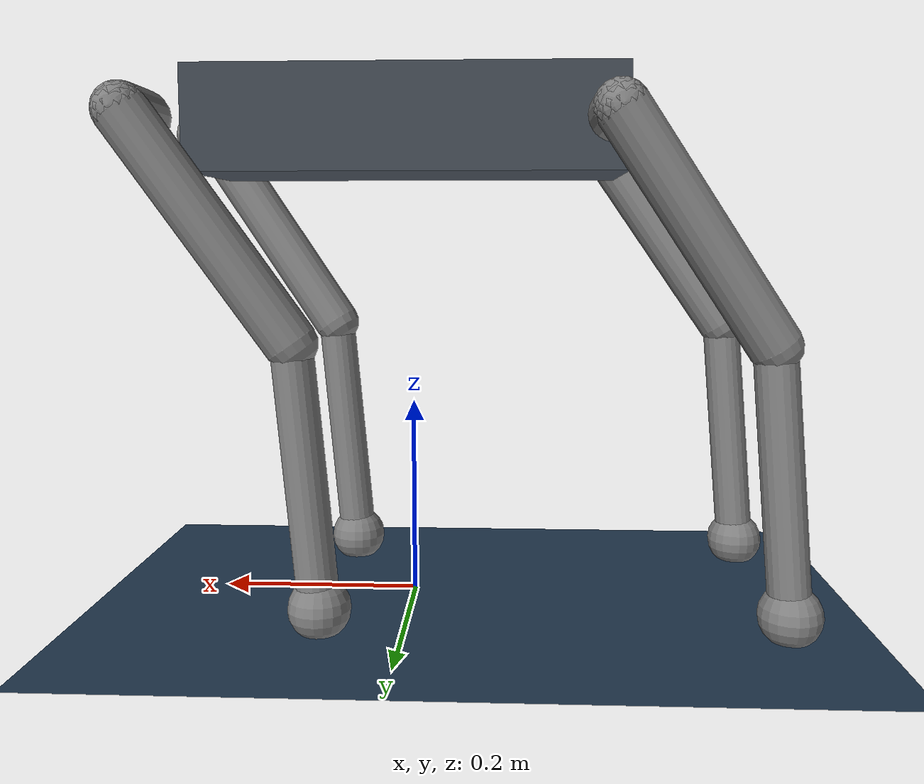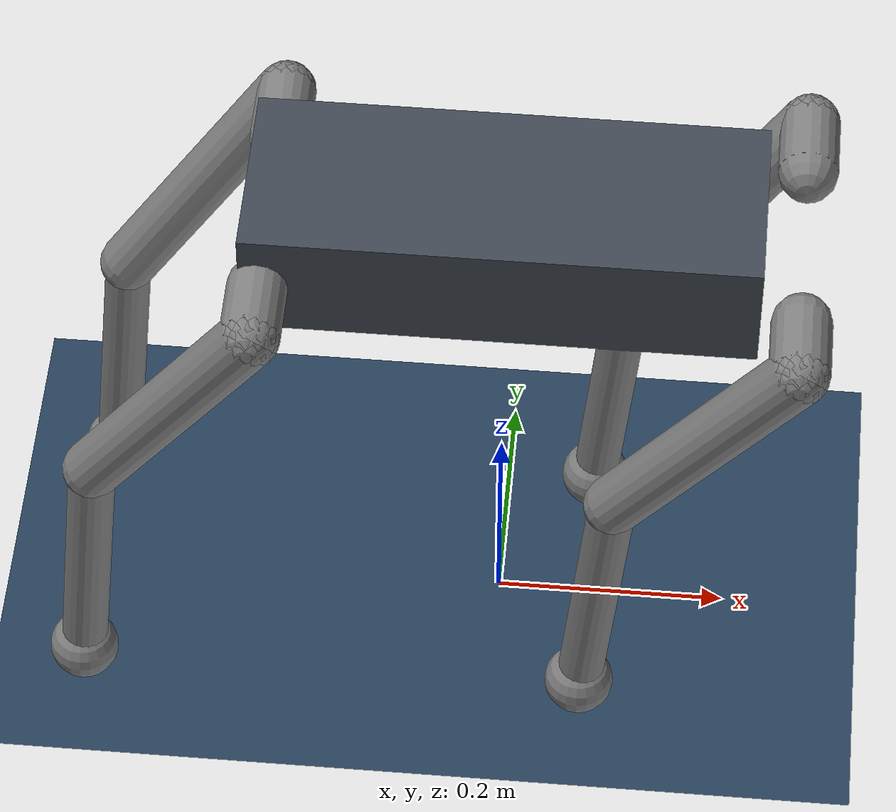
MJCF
<mujoco model="laikago scene">
  <include file="laikago.xml"/>

  <visual>
    <headlight diffuse="0.6 0.6 0.6" ambient="0.3 0.3 0.3"
      specular="0 0 0"/>
    <rgba haze="0.15 0.25 0.35 1"/>
    <global azimuth="-130" elevation="-20"/>
  </visual>

  <asset>
    <texture type="skybox" builtin="gradient" rgb1="0.3 0.5 0.7"
      rgb2="0 0 0" width="512" height="3072"/>
    <texture type="2d" name="groundplane" builtin="checker" mark="edge"
      rgb1="0.2 0.3 0.4" rgb2="0.1 0.2 0.3" markrgb="0.8 0.8 0.8"
      width="300" height="300"/>
    <material name="groundplane" texture="groundplane" texuniform="true"
      texrepeat="5 5" reflectance="0.2"/>
  </asset>

  <worldbody>
    <light pos="0 0 1.5" dir="0 0 -1" directional="true"/>
    <geom name="floor" size="0 0 0.05" type="plane"
      material="groundplane"/>
  </worldbody>
</mujoco>

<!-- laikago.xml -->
<mujoco model="laikago">
  <compiler angle="radian" autolimits="true"/>
  <option timestep="0.002"/>

  <default>
    <joint damping="1" armature="0.01"/>
    <geom contype="0" conaffinity="0" density="500"/>
  </default>

  <worldbody>
    <body name="trunk" pos="0 0 0.48">
      <freejoint name="root"/>
      <geom type="box" size="0.21 0.08 0.05" rgba="0.25 0.28 0.32 1"/>

      <body name="FR_hip" pos="0.242889 -0.0817145 0">
        <joint name="FR_hip_joint" axis="-1 0 0" range="-0.873 1.0472"/>
        <geom type="capsule" fromto="0 0 0 0 -0.053565 0" size="0.025"/>
        <body name="FR_thigh" pos="0 -0.053565 0">
          <joint name="FR_thigh_joint" axis="0 1 0" range="-1.3 3.4"/>
          <geom type="capsule" fromto="0 0 0 -0.1422 0.02069 -0.20833" size="0.025"/>
          <body name="FR_calf" pos="-0.1422 0.02069 -0.20833">
            <joint name="FR_calf_joint" axis="0 1 0" range="-2.164 0"/>
            <geom type="capsule" fromto="0 0 0 -0.022 0 -0.25" size="0.02"/>
            <body name="FR_foot" pos="-0.022 0 -0.25">
              <geom type="sphere" size="0.03"/>
              <site name="FR_foot_site" size="0.01"/>
            </body>
          </body>
        </body>
      </body>

      <body name="FL_hip" pos="0.242889 0.0817145 0">
        <joint name="FL_hip_joint" axis="1 0 0" range="-0.873 1.0472"/>
        <geom type="capsule" fromto="0 0 0 0 0.055855 0" size="0.025"/>
        <body name="FL_thigh" pos="0 0.055855 0">
          <joint name="FL_thigh_joint" axis="0 1 0" range="-1.3 3.4"/>
          <geom type="capsule" fromto="0 0 0 -0.1422 -0.02069 -0.20833" size="0.025"/>
          <body name="FL_calf" pos="-0.1422 -0.02069 -0.20833">
            <joint name="FL_calf_joint" axis="0 1 0" range="-2.164 0"/>
            <geom type="capsule" fromto="0 0 0 -0.022 0 -0.25" size="0.02"/>
            <body name="FL_foot" pos="-0.022 0 -0.25">
              <geom type="sphere" size="0.03"/>
              <site name="FL_foot_site" size="0.01"/>
            </body>
          </body>
        </body>
      </body>

      <body name="RR_hip" pos="-0.194401 -0.0817145 0">
        <joint name="RR_hip_joint" axis="-1 0 0" range="-0.873 1.0472"/>
        <geom type="capsule" fromto="0 0 0 0 -0.053565 0" size="0.025"/>
        <body name="RR_thigh" pos="0 -0.053565 0">
          <joint name="RR_thigh_joint" axis="0 1 0" range="-1.3 3.4"/>
          <geom type="capsule" fromto="0 0 0 -0.1422 0.02069 -0.20833" size="0.025"/>
          <body name="RR_calf" pos="-0.1422 0.02069 -0.20833">
            <joint name="RR_calf_joint" axis="0 1 0" range="-2.164 0"/>
            <geom type="capsule" fromto="0 0 0 -0.022 0 -0.25" size="0.02"/>
            <body name="RR_foot" pos="-0.022 0 -0.25">
              <geom type="sphere" size="0.03"/>
              <site name="RR_foot_site" size="0.01"/>
            </body>
          </body>
        </body>
      </body>

      <body name="RL_hip" pos="-0.194401 0.0817145 0">
        <joint name="RL_hip_joint" axis="1 0 0" range="-0.873 1.0472"/>
        <geom type="capsule" fromto="0 0 0 0 0.055855 0" size="0.025"/>
        <body name="RL_thigh" pos="0 0.055855 0">
          <joint name="RL_thigh_joint" axis="0 1 0" range="-1.3 3.4"/>
          <geom type="capsule" fromto="0 0 0 -0.1422 -0.02069 -0.20833" size="0.025"/>
          <body name="RL_calf" pos="-0.1422 -0.02069 -0.20833">
            <joint name="RL_calf_joint" axis="0 1 0" range="-2.164 0"/>
            <geom type="capsule" fromto="0 0 0 -0.022 0 -0.25" size="0.02"/>
            <body name="RL_foot" pos="-0.022 0 -0.25">
              <geom type="sphere" size="0.03"/>
              <site name="RL_foot_site" size="0.01"/>
            </body>
          </body>
        </body>
      </body>
    </body>
  </worldbody>
</mujoco>
